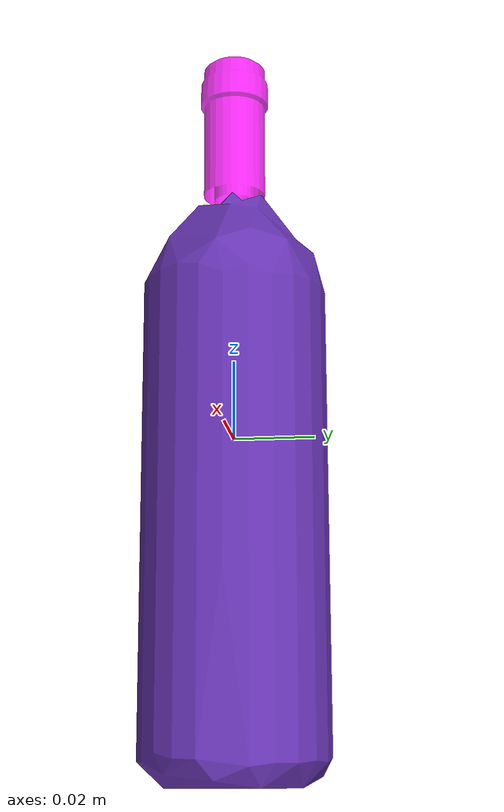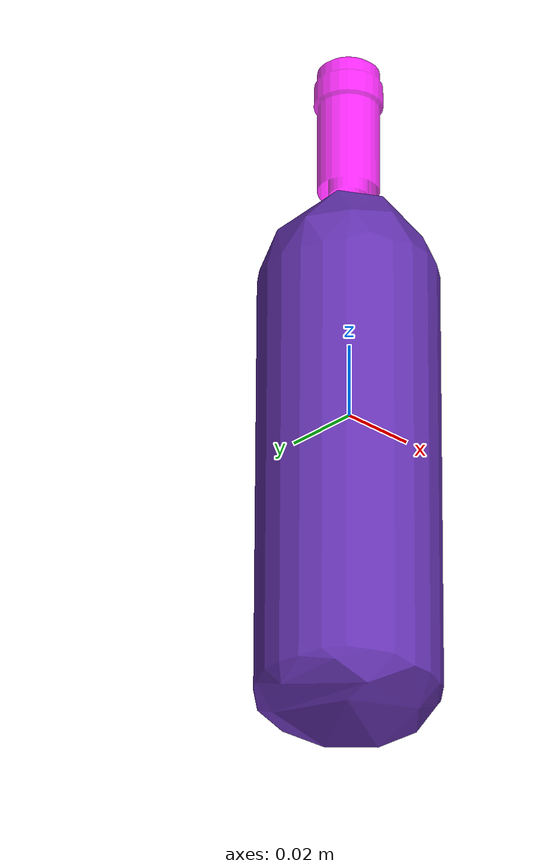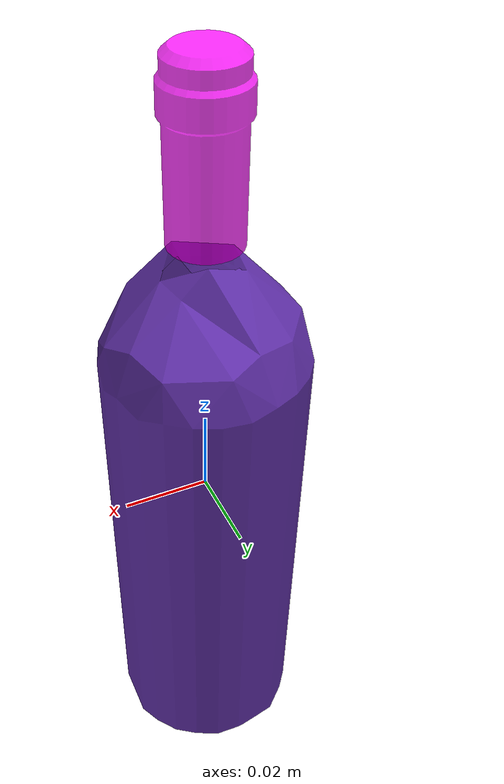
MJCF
<?xml version="1.0" encoding="utf-8"?>
<mujoco model="top_watertight_tiny">

  <asset>

    <mesh file="top_watertight_tiny.obj"/>

    <mesh file="top_watertight_tiny_collision_0.obj"/>

    <mesh file="top_watertight_tiny_collision_1.obj"/>

    <mesh file="top_watertight_tiny_collision_2.obj"/>

    <mesh file="top_watertight_tiny_collision_3.obj"/>

    <mesh file="top_watertight_tiny_collision_4.obj"/>

    <mesh file="top_watertight_tiny_collision_5.obj"/>

    <mesh file="top_watertight_tiny_collision_6.obj"/>

    <mesh file="top_watertight_tiny_collision_7.obj"/>

    <mesh file="top_watertight_tiny_collision_8.obj"/>

    <mesh file="top_watertight_tiny_collision_9.obj"/>

    <mesh file="top_watertight_tiny_collision_10.obj"/>

    <mesh file="top_watertight_tiny_collision_11.obj"/>

    <mesh file="top_watertight_tiny_collision_12.obj"/>

    <mesh file="top_watertight_tiny_collision_13.obj"/>

    <mesh file="top_watertight_tiny_collision_14.obj"/>

    <mesh file="top_watertight_tiny_collision_15.obj"/>

    <mesh file="top_watertight_tiny_collision_16.obj"/>

    <mesh file="top_watertight_tiny_collision_17.obj"/>

    <mesh file="top_watertight_tiny_collision_18.obj"/>

    <mesh file="top_watertight_tiny_collision_19.obj"/>

    <mesh file="top_watertight_tiny_collision_20.obj"/>

    <mesh file="top_watertight_tiny_collision_21.obj"/>

    <mesh file="top_watertight_tiny_collision_22.obj"/>

    <mesh file="top_watertight_tiny_collision_23.obj"/>

    <mesh file="top_watertight_tiny_collision_24.obj"/>

    <mesh file="top_watertight_tiny_collision_25.obj"/>

    <mesh file="top_watertight_tiny_collision_26.obj"/>

    <mesh file="top_watertight_tiny_collision_27.obj"/>

    <mesh file="top_watertight_tiny_collision_28.obj"/>

    <mesh file="top_watertight_tiny_collision_29.obj"/>

    <mesh file="top_watertight_tiny_collision_30.obj"/>

    <mesh file="top_watertight_tiny_collision_31.obj"/>

    <mesh file="top_watertight_tiny_collision_32.obj"/>

    <mesh file="top_watertight_tiny_collision_33.obj"/>

    <mesh file="top_watertight_tiny_collision_34.obj"/>

    <mesh file="top_watertight_tiny_collision_35.obj"/>

    <mesh file="top_watertight_tiny_collision_36.obj"/>

    <mesh file="bottom_watertight_tiny.obj"/>

    <mesh file="bottom_watertight_tiny_collision_0.obj"/>

    <mesh file="bottom_watertight_tiny_collision_1.obj"/>

    <mesh file="bottom_watertight_tiny_collision_2.obj"/>

    <mesh file="bottom_watertight_tiny_collision_3.obj"/>

    <mesh file="bottom_watertight_tiny_collision_4.obj"/>

    <mesh file="bottom_watertight_tiny_collision_5.obj"/>

    <mesh file="bottom_watertight_tiny_collision_6.obj"/>

    <mesh file="bottom_watertight_tiny_collision_7.obj"/>

    <mesh file="bottom_watertight_tiny_collision_8.obj"/>

    <mesh file="bottom_watertight_tiny_collision_9.obj"/>

    <mesh file="bottom_watertight_tiny_collision_10.obj"/>

    <mesh file="bottom_watertight_tiny_collision_11.obj"/>

    <mesh file="bottom_watertight_tiny_collision_12.obj"/>

    <mesh file="bottom_watertight_tiny_collision_13.obj"/>

    <mesh file="bottom_watertight_tiny_collision_14.obj"/>

    <mesh file="bottom_watertight_tiny_collision_15.obj"/>

    <mesh file="bottom_watertight_tiny_collision_16.obj"/>

    <mesh file="bottom_watertight_tiny_collision_17.obj"/>

    <mesh file="bottom_watertight_tiny_collision_18.obj"/>

    <mesh file="bottom_watertight_tiny_collision_19.obj"/>

    <mesh file="bottom_watertight_tiny_collision_20.obj"/>

    <mesh file="bottom_watertight_tiny_collision_21.obj"/>

    <mesh file="bottom_watertight_tiny_collision_22.obj"/>

    <mesh file="bottom_watertight_tiny_collision_23.obj"/>

    <mesh file="bottom_watertight_tiny_collision_24.obj"/>

    <mesh file="bottom_watertight_tiny_collision_25.obj"/>

    <mesh file="bottom_watertight_tiny_collision_26.obj"/>

    <mesh file="bottom_watertight_tiny_collision_27.obj"/>

    <mesh file="bottom_watertight_tiny_collision_28.obj"/>

    <mesh file="bottom_watertight_tiny_collision_29.obj"/>

    <mesh file="bottom_watertight_tiny_collision_30.obj"/>

    <mesh file="bottom_watertight_tiny_collision_31.obj"/>

    <mesh file="bottom_watertight_tiny_collision_32.obj"/>

    <mesh file="bottom_watertight_tiny_collision_33.obj"/>

    <mesh file="bottom_watertight_tiny_collision_34.obj"/>

    <mesh file="bottom_watertight_tiny_collision_35.obj"/>

    <mesh file="bottom_watertight_tiny_collision_36.obj"/>

    <mesh file="bottom_watertight_tiny_collision_37.obj"/>

    <mesh file="bottom_watertight_tiny_collision_38.obj"/>

    <mesh file="bottom_watertight_tiny_collision_39.obj"/>

    <mesh file="bottom_watertight_tiny_collision_40.obj"/>

    <mesh file="bottom_watertight_tiny_collision_41.obj"/>

    <mesh file="bottom_watertight_tiny_collision_42.obj"/>

    <mesh file="bottom_watertight_tiny_collision_43.obj"/>

    <mesh file="bottom_watertight_tiny_collision_44.obj"/>

    <mesh file="bottom_watertight_tiny_collision_45.obj"/>

    <mesh file="bottom_watertight_tiny_collision_46.obj"/>

    <mesh file="bottom_watertight_tiny_collision_47.obj"/>

    <mesh file="bottom_watertight_tiny_collision_48.obj"/>

    <mesh file="bottom_watertight_tiny_collision_49.obj"/>

    <mesh file="bottom_watertight_tiny_collision_50.obj"/>

    <mesh file="bottom_watertight_tiny_collision_51.obj"/>

    <mesh file="bottom_watertight_tiny_collision_52.obj"/>

    <mesh file="bottom_watertight_tiny_collision_53.obj"/>

    <mesh file="bottom_watertight_tiny_collision_54.obj"/>

    <mesh file="bottom_watertight_tiny_collision_55.obj"/>

    <mesh file="bottom_watertight_tiny_collision_56.obj"/>

    <mesh file="bottom_watertight_tiny_collision_57.obj"/>

    <mesh file="bottom_watertight_tiny_collision_58.obj"/>

    <mesh file="bottom_watertight_tiny_collision_59.obj"/>

    <mesh file="bottom_watertight_tiny_collision_60.obj"/>

    <mesh file="bottom_watertight_tiny_collision_61.obj"/>

    <mesh file="bottom_watertight_tiny_collision_62.obj"/>

    <mesh file="bottom_watertight_tiny_collision_63.obj"/>

    <mesh file="bottom_watertight_tiny_collision_64.obj"/>

    <mesh file="bottom_watertight_tiny_collision_65.obj"/>

    <mesh file="bottom_watertight_tiny_collision_66.obj"/>

    <mesh file="bottom_watertight_tiny_collision_67.obj"/>

    <mesh file="bottom_watertight_tiny_collision_68.obj"/>

    <mesh file="bottom_watertight_tiny_collision_69.obj"/>

    <mesh file="bottom_watertight_tiny_collision_70.obj"/>

    <mesh file="bottom_watertight_tiny_collision_71.obj"/>

    <mesh file="bottom_watertight_tiny_collision_72.obj"/>

    <mesh file="bottom_watertight_tiny_collision_73.obj"/>

    <mesh file="bottom_watertight_tiny_collision_74.obj"/>

    <mesh file="bottom_watertight_tiny_collision_75.obj"/>

    <mesh file="bottom_watertight_tiny_collision_76.obj"/>

    <mesh file="bottom_watertight_tiny_collision_77.obj"/>

    <mesh file="bottom_watertight_tiny_collision_78.obj"/>

    <mesh file="bottom_watertight_tiny_collision_79.obj"/>

    <mesh file="bottom_watertight_tiny_collision_80.obj"/>

    <mesh file="bottom_watertight_tiny_collision_81.obj"/>

    <mesh file="bottom_watertight_tiny_collision_82.obj"/>

    <mesh file="bottom_watertight_tiny_collision_83.obj"/>

    <mesh file="bottom_watertight_tiny_collision_84.obj"/>

    <mesh file="bottom_watertight_tiny_collision_85.obj"/>

    <mesh file="bottom_watertight_tiny_collision_86.obj"/>

    <mesh file="bottom_watertight_tiny_collision_87.obj"/>

    <mesh file="bottom_watertight_tiny_collision_88.obj"/>

    <mesh file="bottom_watertight_tiny_collision_89.obj"/>

    <mesh file="bottom_watertight_tiny_collision_90.obj"/>

    <mesh file="bottom_watertight_tiny_collision_91.obj"/>

    <mesh file="bottom_watertight_tiny_collision_92.obj"/>

    <mesh file="bottom_watertight_tiny_collision_93.obj"/>

  </asset>

  <worldbody>

    <body name="top_watertight_tiny">

      <freejoint/>

      <geom mesh="top_watertight_tiny" group="2" type="mesh" rgba="0.4 0.2 0.7 1" contype="0" conaffinity="0" solimp="0.90 0.95 0.001" solref="0.02 1.0" density="100" friction="0.95 0.4 0.3"/>

      <geom mesh="top_watertight_tiny_collision_0" rgba="0.7639131796229641 0.8766174646966979 0.84592390301641 1" group="3" type="mesh" solimp="0.90 0.95 0.001" solref="0.02 1.0" density="100" friction="0.95 0.4 0.3"/>

      <geom mesh="top_watertight_tiny_collision_1" rgba="0.19510721336041992 0.7987230168485298 0.9120150826801752 1" group="3" type="mesh" solimp="0.90 0.95 0.001" solref="0.02 1.0" density="100" friction="0.95 0.4 0.3"/>

      <geom mesh="top_watertight_tiny_collision_2" rgba="0.9602540300898867 0.8270701579940186 0.8924194395684479 1" group="3" type="mesh" solimp="0.90 0.95 0.001" solref="0.02 1.0" density="100" friction="0.95 0.4 0.3"/>

      <geom mesh="top_watertight_tiny_collision_3" rgba="0.15298178990234457 0.6684590594172674 0.7716984160903877 1" group="3" type="mesh" solimp="0.90 0.95 0.001" solref="0.02 1.0" density="100" friction="0.95 0.4 0.3"/>

      <geom mesh="top_watertight_tiny_collision_4" rgba="0.58464338885555 0.4945434229659038 0.4750791218380328 1" group="3" type="mesh" solimp="0.90 0.95 0.001" solref="0.02 1.0" density="100" friction="0.95 0.4 0.3"/>

      <geom mesh="top_watertight_tiny_collision_5" rgba="0.4601047467938191 0.2160642820322619 0.7561873815878265 1" group="3" type="mesh" solimp="0.90 0.95 0.001" solref="0.02 1.0" density="100" friction="0.95 0.4 0.3"/>

      <geom mesh="top_watertight_tiny_collision_6" rgba="0.2959025538195038 0.7032097822555691 0.18761564830547317 1" group="3" type="mesh" solimp="0.90 0.95 0.001" solref="0.02 1.0" density="100" friction="0.95 0.4 0.3"/>

      <geom mesh="top_watertight_tiny_collision_7" rgba="0.7169793740565072 0.5761407707422053 0.22744858187672734 1" group="3" type="mesh" solimp="0.90 0.95 0.001" solref="0.02 1.0" density="100" friction="0.95 0.4 0.3"/>

      <geom mesh="top_watertight_tiny_collision_8" rgba="0.1307638791836434 0.3065480760086786 0.7687001497967263 1" group="3" type="mesh" solimp="0.90 0.95 0.001" solref="0.02 1.0" density="100" friction="0.95 0.4 0.3"/>

      <geom mesh="top_watertight_tiny_collision_9" rgba="0.10890787358804177 0.784763120940705 0.4915728737176337 1" group="3" type="mesh" solimp="0.90 0.95 0.001" solref="0.02 1.0" density="100" friction="0.95 0.4 0.3"/>

      <geom mesh="top_watertight_tiny_collision_10" rgba="0.9780890256800918 0.7475122147847815 0.7068656836181546 1" group="3" type="mesh" solimp="0.90 0.95 0.001" solref="0.02 1.0" density="100" friction="0.95 0.4 0.3"/>

      <geom mesh="top_watertight_tiny_collision_11" rgba="0.2506220678483987 0.5373837416915994 0.9608969145724282 1" group="3" type="mesh" solimp="0.90 0.95 0.001" solref="0.02 1.0" density="100" friction="0.95 0.4 0.3"/>

      <geom mesh="top_watertight_tiny_collision_12" rgba="0.645609437624362 0.7030347403907194 0.7968083338602769 1" group="3" type="mesh" solimp="0.90 0.95 0.001" solref="0.02 1.0" density="100" friction="0.95 0.4 0.3"/>

      <geom mesh="top_watertight_tiny_collision_13" rgba="0.5619024916672556 0.7367007362024118 0.9072824838928428 1" group="3" type="mesh" solimp="0.90 0.95 0.001" solref="0.02 1.0" density="100" friction="0.95 0.4 0.3"/>

      <geom mesh="top_watertight_tiny_collision_14" rgba="0.6770641619365368 0.6389454421997466 0.3428296104017664 1" group="3" type="mesh" solimp="0.90 0.95 0.001" solref="0.02 1.0" density="100" friction="0.95 0.4 0.3"/>

      <geom mesh="top_watertight_tiny_collision_15" rgba="0.40410237035899976 0.6487599156065581 0.9279989628421783 1" group="3" type="mesh" solimp="0.90 0.95 0.001" solref="0.02 1.0" density="100" friction="0.95 0.4 0.3"/>

      <geom mesh="top_watertight_tiny_collision_16" rgba="0.007504496079856149 0.15764836382406144 0.9603950291772815 1" group="3" type="mesh" solimp="0.90 0.95 0.001" solref="0.02 1.0" density="100" friction="0.95 0.4 0.3"/>

      <geom mesh="top_watertight_tiny_collision_17" rgba="0.19496105483289294 0.7262193248307516 0.584420613435376 1" group="3" type="mesh" solimp="0.90 0.95 0.001" solref="0.02 1.0" density="100" friction="0.95 0.4 0.3"/>

      <geom mesh="top_watertight_tiny_collision_18" rgba="0.04987727353918392 0.1395307956509042 0.18204156767560198 1" group="3" type="mesh" solimp="0.90 0.95 0.001" solref="0.02 1.0" density="100" friction="0.95 0.4 0.3"/>

      <geom mesh="top_watertight_tiny_collision_19" rgba="0.5995248258010721 0.18310495799447113 0.8793140058193356 1" group="3" type="mesh" solimp="0.90 0.95 0.001" solref="0.02 1.0" density="100" friction="0.95 0.4 0.3"/>

      <geom mesh="top_watertight_tiny_collision_20" rgba="0.5277131052826484 0.03456818763062319 0.6095338758826968 1" group="3" type="mesh" solimp="0.90 0.95 0.001" solref="0.02 1.0" density="100" friction="0.95 0.4 0.3"/>

      <geom mesh="top_watertight_tiny_collision_21" rgba="0.6166677694327913 0.6264601628174831 0.2184817010494029 1" group="3" type="mesh" solimp="0.90 0.95 0.001" solref="0.02 1.0" density="100" friction="0.95 0.4 0.3"/>

      <geom mesh="top_watertight_tiny_collision_22" rgba="0.7102041265512519 0.7002672895857274 0.02212696242653689 1" group="3" type="mesh" solimp="0.90 0.95 0.001" solref="0.02 1.0" density="100" friction="0.95 0.4 0.3"/>

      <geom mesh="top_watertight_tiny_collision_23" rgba="0.08001569328377245 0.6924060442300365 0.8178750956627043 1" group="3" type="mesh" solimp="0.90 0.95 0.001" solref="0.02 1.0" density="100" friction="0.95 0.4 0.3"/>

      <geom mesh="top_watertight_tiny_collision_24" rgba="0.04471000420996185 0.7066463699724858 0.7827603011706414 1" group="3" type="mesh" solimp="0.90 0.95 0.001" solref="0.02 1.0" density="100" friction="0.95 0.4 0.3"/>

      <geom mesh="top_watertight_tiny_collision_25" rgba="0.5283444125332001 0.6581429813256201 0.551031836223589 1" group="3" type="mesh" solimp="0.90 0.95 0.001" solref="0.02 1.0" density="100" friction="0.95 0.4 0.3"/>

      <geom mesh="top_watertight_tiny_collision_26" rgba="0.3022475832179793 0.9149638373864749 0.7333979811387425 1" group="3" type="mesh" solimp="0.90 0.95 0.001" solref="0.02 1.0" density="100" friction="0.95 0.4 0.3"/>

      <geom mesh="top_watertight_tiny_collision_27" rgba="0.893281969260742 0.03795587646726628 0.32893539912938696 1" group="3" type="mesh" solimp="0.90 0.95 0.001" solref="0.02 1.0" density="100" friction="0.95 0.4 0.3"/>

      <geom mesh="top_watertight_tiny_collision_28" rgba="0.9094240134952587 0.6339879588056984 0.7976324502315822 1" group="3" type="mesh" solimp="0.90 0.95 0.001" solref="0.02 1.0" density="100" friction="0.95 0.4 0.3"/>

      <geom mesh="top_watertight_tiny_collision_29" rgba="0.4633556792218282 0.5275787242084681 0.5475225953091643 1" group="3" type="mesh" solimp="0.90 0.95 0.001" solref="0.02 1.0" density="100" friction="0.95 0.4 0.3"/>

      <geom mesh="top_watertight_tiny_collision_30" rgba="0.5353972680837177 0.6747318857295015 0.41134759567536316 1" group="3" type="mesh" solimp="0.90 0.95 0.001" solref="0.02 1.0" density="100" friction="0.95 0.4 0.3"/>

      <geom mesh="top_watertight_tiny_collision_31" rgba="0.7787796308839616 0.37187447519404837 0.08521890751006556 1" group="3" type="mesh" solimp="0.90 0.95 0.001" solref="0.02 1.0" density="100" friction="0.95 0.4 0.3"/>

      <geom mesh="top_watertight_tiny_collision_32" rgba="0.59077444678266 0.03400599660107928 0.3569970660589773 1" group="3" type="mesh" solimp="0.90 0.95 0.001" solref="0.02 1.0" density="100" friction="0.95 0.4 0.3"/>

      <geom mesh="top_watertight_tiny_collision_33" rgba="0.7453966552439302 0.12250132301758254 0.3913120432382262 1" group="3" type="mesh" solimp="0.90 0.95 0.001" solref="0.02 1.0" density="100" friction="0.95 0.4 0.3"/>

      <geom mesh="top_watertight_tiny_collision_34" rgba="0.15481366485193715 0.8658717182644121 0.6147008026464785 1" group="3" type="mesh" solimp="0.90 0.95 0.001" solref="0.02 1.0" density="100" friction="0.95 0.4 0.3"/>

      <geom mesh="top_watertight_tiny_collision_35" rgba="0.48377483204822336 0.3395572748846186 0.05324692686646837 1" group="3" type="mesh" solimp="0.90 0.95 0.001" solref="0.02 1.0" density="100" friction="0.95 0.4 0.3"/>

      <geom mesh="top_watertight_tiny_collision_36" rgba="0.5991884680051638 0.19458855608337533 0.27392460886472236 1" group="3" type="mesh" solimp="0.90 0.95 0.001" solref="0.02 1.0" density="100" friction="0.95 0.4 0.3"/>

      <body name="bottom_watertight_tiny">

        <geom mesh="bottom_watertight_tiny" group="2" type="mesh" rgba="1 0 1 0.8" contype="0" conaffinity="0" solimp="0.90 0.95 0.001" solref="0.02 1.0" density="100" friction="0.95 0.4 0.3"/>

        <geom mesh="bottom_watertight_tiny_collision_0" rgba="0.9853082144443334 0.38233365690192034 0.24698996170023246 1" group="3" type="mesh" solimp="0.90 0.95 0.001" solref="0.02 1.0" density="100" friction="0.95 0.4 0.3"/>

        <geom mesh="bottom_watertight_tiny_collision_1" rgba="0.3083875910203884 0.9671429320074734 0.9790526799747874 1" group="3" type="mesh" solimp="0.90 0.95 0.001" solref="0.02 1.0" density="100" friction="0.95 0.4 0.3"/>

        <geom mesh="bottom_watertight_tiny_collision_2" rgba="0.8781446943270005 0.2192290588660426 0.44300979918887706 1" group="3" type="mesh" solimp="0.90 0.95 0.001" solref="0.02 1.0" density="100" friction="0.95 0.4 0.3"/>

        <geom mesh="bottom_watertight_tiny_collision_3" rgba="0.1741220077358372 0.3251538654090539 0.7429052278362229 1" group="3" type="mesh" solimp="0.90 0.95 0.001" solref="0.02 1.0" density="100" friction="0.95 0.4 0.3"/>

        <geom mesh="bottom_watertight_tiny_collision_4" rgba="0.10915865590272145 0.3343855142909302 0.9866967469484065 1" group="3" type="mesh" solimp="0.90 0.95 0.001" solref="0.02 1.0" density="100" friction="0.95 0.4 0.3"/>

        <geom mesh="bottom_watertight_tiny_collision_5" rgba="0.25947673515271186 0.7384080607275862 0.45977848998197046 1" group="3" type="mesh" solimp="0.90 0.95 0.001" solref="0.02 1.0" density="100" friction="0.95 0.4 0.3"/>

        <geom mesh="bottom_watertight_tiny_collision_6" rgba="0.0415232114101286 0.8959007229286848 0.36003999852527024 1" group="3" type="mesh" solimp="0.90 0.95 0.001" solref="0.02 1.0" density="100" friction="0.95 0.4 0.3"/>

        <geom mesh="bottom_watertight_tiny_collision_7" rgba="0.7683340571687312 0.5480132849196077 0.7930444177387387 1" group="3" type="mesh" solimp="0.90 0.95 0.001" solref="0.02 1.0" density="100" friction="0.95 0.4 0.3"/>

        <geom mesh="bottom_watertight_tiny_collision_8" rgba="0.44368754701543833 0.2095262419619346 0.788988744952007 1" group="3" type="mesh" solimp="0.90 0.95 0.001" solref="0.02 1.0" density="100" friction="0.95 0.4 0.3"/>

        <geom mesh="bottom_watertight_tiny_collision_9" rgba="0.07330606377444193 0.8267267944720152 0.45513073168566 1" group="3" type="mesh" solimp="0.90 0.95 0.001" solref="0.02 1.0" density="100" friction="0.95 0.4 0.3"/>

        <geom mesh="bottom_watertight_tiny_collision_10" rgba="0.12781158498267775 0.08745929155287924 0.2599902867010725 1" group="3" type="mesh" solimp="0.90 0.95 0.001" solref="0.02 1.0" density="100" friction="0.95 0.4 0.3"/>

        <geom mesh="bottom_watertight_tiny_collision_11" rgba="0.5844625476926059 0.15946536351993246 0.9864688454268145 1" group="3" type="mesh" solimp="0.90 0.95 0.001" solref="0.02 1.0" density="100" friction="0.95 0.4 0.3"/>

        <geom mesh="bottom_watertight_tiny_collision_12" rgba="0.8380231988702354 0.15070037666813585 0.23065274579927975 1" group="3" type="mesh" solimp="0.90 0.95 0.001" solref="0.02 1.0" density="100" friction="0.95 0.4 0.3"/>

        <geom mesh="bottom_watertight_tiny_collision_13" rgba="0.19112567865055108 0.03940339015411143 0.4342191441709634 1" group="3" type="mesh" solimp="0.90 0.95 0.001" solref="0.02 1.0" density="100" friction="0.95 0.4 0.3"/>

        <geom mesh="bottom_watertight_tiny_collision_14" rgba="0.400991622546508 0.9571608466614671 0.1843398681592192 1" group="3" type="mesh" solimp="0.90 0.95 0.001" solref="0.02 1.0" density="100" friction="0.95 0.4 0.3"/>

        <geom mesh="bottom_watertight_tiny_collision_15" rgba="0.36100474661372306 0.9957896371533742 0.8383253591757491 1" group="3" type="mesh" solimp="0.90 0.95 0.001" solref="0.02 1.0" density="100" friction="0.95 0.4 0.3"/>

        <geom mesh="bottom_watertight_tiny_collision_16" rgba="0.3213961268705443 0.6459938416941668 0.8781538437242606 1" group="3" type="mesh" solimp="0.90 0.95 0.001" solref="0.02 1.0" density="100" friction="0.95 0.4 0.3"/>

        <geom mesh="bottom_watertight_tiny_collision_17" rgba="0.04612167889660179 0.4550652019429594 0.24860608806497086 1" group="3" type="mesh" solimp="0.90 0.95 0.001" solref="0.02 1.0" density="100" friction="0.95 0.4 0.3"/>

        <geom mesh="bottom_watertight_tiny_collision_18" rgba="0.39619000912190694 0.26016128885640843 0.03906589184522402 1" group="3" type="mesh" solimp="0.90 0.95 0.001" solref="0.02 1.0" density="100" friction="0.95 0.4 0.3"/>

        <geom mesh="bottom_watertight_tiny_collision_19" rgba="0.8422748012211095 0.302433812277898 0.20294926589119022 1" group="3" type="mesh" solimp="0.90 0.95 0.001" solref="0.02 1.0" density="100" friction="0.95 0.4 0.3"/>

        <geom mesh="bottom_watertight_tiny_collision_20" rgba="0.21148729104562836 0.46043218513833173 0.7638151421762904 1" group="3" type="mesh" solimp="0.90 0.95 0.001" solref="0.02 1.0" density="100" friction="0.95 0.4 0.3"/>

        <geom mesh="bottom_watertight_tiny_collision_21" rgba="0.7352828485668915 0.6826113084061032 0.27270586913856387 1" group="3" type="mesh" solimp="0.90 0.95 0.001" solref="0.02 1.0" density="100" friction="0.95 0.4 0.3"/>

        <geom mesh="bottom_watertight_tiny_collision_22" rgba="0.8655683915175284 0.714536327771994 0.9972263611422214 1" group="3" type="mesh" solimp="0.90 0.95 0.001" solref="0.02 1.0" density="100" friction="0.95 0.4 0.3"/>

        <geom mesh="bottom_watertight_tiny_collision_23" rgba="0.5149983102271192 0.06343067744052844 0.8017542759915478 1" group="3" type="mesh" solimp="0.90 0.95 0.001" solref="0.02 1.0" density="100" friction="0.95 0.4 0.3"/>

        <geom mesh="bottom_watertight_tiny_collision_24" rgba="0.4934365017366993 0.9063691765150296 0.5261688495228233 1" group="3" type="mesh" solimp="0.90 0.95 0.001" solref="0.02 1.0" density="100" friction="0.95 0.4 0.3"/>

        <geom mesh="bottom_watertight_tiny_collision_25" rgba="0.18213576718722901 0.9021919159410994 0.8839478075589322 1" group="3" type="mesh" solimp="0.90 0.95 0.001" solref="0.02 1.0" density="100" friction="0.95 0.4 0.3"/>

        <geom mesh="bottom_watertight_tiny_collision_26" rgba="0.9710993297200944 0.45615680921021806 0.24048894730896675 1" group="3" type="mesh" solimp="0.90 0.95 0.001" solref="0.02 1.0" density="100" friction="0.95 0.4 0.3"/>

        <geom mesh="bottom_watertight_tiny_collision_27" rgba="0.028309443905967346 0.8737187667212292 0.20977256261819544 1" group="3" type="mesh" solimp="0.90 0.95 0.001" solref="0.02 1.0" density="100" friction="0.95 0.4 0.3"/>

        <geom mesh="bottom_watertight_tiny_collision_28" rgba="0.5366351598043515 0.6880966024514533 0.6834351566444892 1" group="3" type="mesh" solimp="0.90 0.95 0.001" solref="0.02 1.0" density="100" friction="0.95 0.4 0.3"/>

        <geom mesh="bottom_watertight_tiny_collision_29" rgba="0.4325810192211925 0.48035184718223967 0.29210589692593114 1" group="3" type="mesh" solimp="0.90 0.95 0.001" solref="0.02 1.0" density="100" friction="0.95 0.4 0.3"/>

        <geom mesh="bottom_watertight_tiny_collision_30" rgba="0.9308380846414873 0.6758057601912336 0.3453138511078192 1" group="3" type="mesh" solimp="0.90 0.95 0.001" solref="0.02 1.0" density="100" friction="0.95 0.4 0.3"/>

        <geom mesh="bottom_watertight_tiny_collision_31" rgba="0.2725359243000839 0.7325519704752896 0.74555361502356 1" group="3" type="mesh" solimp="0.90 0.95 0.001" solref="0.02 1.0" density="100" friction="0.95 0.4 0.3"/>

        <geom mesh="bottom_watertight_tiny_collision_32" rgba="0.9812433260081983 0.3948468706199255 0.9945554765429027 1" group="3" type="mesh" solimp="0.90 0.95 0.001" solref="0.02 1.0" density="100" friction="0.95 0.4 0.3"/>

        <geom mesh="bottom_watertight_tiny_collision_33" rgba="0.56378504030355 0.8550292109904425 0.22745660741129792 1" group="3" type="mesh" solimp="0.90 0.95 0.001" solref="0.02 1.0" density="100" friction="0.95 0.4 0.3"/>

        <geom mesh="bottom_watertight_tiny_collision_34" rgba="0.7988481763610453 0.010090313214458413 0.29927056086393444 1" group="3" type="mesh" solimp="0.90 0.95 0.001" solref="0.02 1.0" density="100" friction="0.95 0.4 0.3"/>

        <geom mesh="bottom_watertight_tiny_collision_35" rgba="0.6928191324769346 0.08088564915998198 0.677058555884116 1" group="3" type="mesh" solimp="0.90 0.95 0.001" solref="0.02 1.0" density="100" friction="0.95 0.4 0.3"/>

        <geom mesh="bottom_watertight_tiny_collision_36" rgba="0.5305010231202294 0.27129620233698926 0.25282251586247817 1" group="3" type="mesh" solimp="0.90 0.95 0.001" solref="0.02 1.0" density="100" friction="0.95 0.4 0.3"/>

        <geom mesh="bottom_watertight_tiny_collision_37" rgba="0.9458976701989638 0.4643456579716624 0.3061313921007597 1" group="3" type="mesh" solimp="0.90 0.95 0.001" solref="0.02 1.0" density="100" friction="0.95 0.4 0.3"/>

        <geom mesh="bottom_watertight_tiny_collision_38" rgba="0.9504948309251797 0.9235807865628124 0.34314284326978617 1" group="3" type="mesh" solimp="0.90 0.95 0.001" solref="0.02 1.0" density="100" friction="0.95 0.4 0.3"/>

        <geom mesh="bottom_watertight_tiny_collision_39" rgba="0.8243449539948448 0.4124947182950083 0.194084454223862 1" group="3" type="mesh" solimp="0.90 0.95 0.001" solref="0.02 1.0" density="100" friction="0.95 0.4 0.3"/>

        <geom mesh="bottom_watertight_tiny_collision_40" rgba="0.6082949591387199 0.12186369637297756 0.969075572499188 1" group="3" type="mesh" solimp="0.90 0.95 0.001" solref="0.02 1.0" density="100" friction="0.95 0.4 0.3"/>

        <geom mesh="bottom_watertight_tiny_collision_41" rgba="0.012336216180586668 0.8436226050478052 0.6270431593922082 1" group="3" type="mesh" solimp="0.90 0.95 0.001" solref="0.02 1.0" density="100" friction="0.95 0.4 0.3"/>

        <geom mesh="bottom_watertight_tiny_collision_42" rgba="0.2959522768954572 0.7908787766917386 0.030525456010583762 1" group="3" type="mesh" solimp="0.90 0.95 0.001" solref="0.02 1.0" density="100" friction="0.95 0.4 0.3"/>

        <geom mesh="bottom_watertight_tiny_collision_43" rgba="0.4495084522831816 0.6306435230530456 0.23493339634158195 1" group="3" type="mesh" solimp="0.90 0.95 0.001" solref="0.02 1.0" density="100" friction="0.95 0.4 0.3"/>

        <geom mesh="bottom_watertight_tiny_collision_44" rgba="0.30414620463523356 0.7535226447160621 0.7463606267646422 1" group="3" type="mesh" solimp="0.90 0.95 0.001" solref="0.02 1.0" density="100" friction="0.95 0.4 0.3"/>

        <geom mesh="bottom_watertight_tiny_collision_45" rgba="0.16618393365986228 0.869951865731177 0.16442043404854478 1" group="3" type="mesh" solimp="0.90 0.95 0.001" solref="0.02 1.0" density="100" friction="0.95 0.4 0.3"/>

        <geom mesh="bottom_watertight_tiny_collision_46" rgba="0.332395047155295 0.8805374601490471 0.9494312748667132 1" group="3" type="mesh" solimp="0.90 0.95 0.001" solref="0.02 1.0" density="100" friction="0.95 0.4 0.3"/>

        <geom mesh="bottom_watertight_tiny_collision_47" rgba="0.5465902352265762 0.4300276729300828 0.7550727307116121 1" group="3" type="mesh" solimp="0.90 0.95 0.001" solref="0.02 1.0" density="100" friction="0.95 0.4 0.3"/>

        <geom mesh="bottom_watertight_tiny_collision_48" rgba="0.1478303243165715 0.409423492505542 0.7840353427362277 1" group="3" type="mesh" solimp="0.90 0.95 0.001" solref="0.02 1.0" density="100" friction="0.95 0.4 0.3"/>

        <geom mesh="bottom_watertight_tiny_collision_49" rgba="0.2295937668223993 0.3147610356467221 0.7007118153231437 1" group="3" type="mesh" solimp="0.90 0.95 0.001" solref="0.02 1.0" density="100" friction="0.95 0.4 0.3"/>

        <geom mesh="bottom_watertight_tiny_collision_50" rgba="0.0701301044184961 0.6136235431664804 0.5587415352322964 1" group="3" type="mesh" solimp="0.90 0.95 0.001" solref="0.02 1.0" density="100" friction="0.95 0.4 0.3"/>

        <geom mesh="bottom_watertight_tiny_collision_51" rgba="0.8345001953782328 0.2644629063162245 0.6542176999705543 1" group="3" type="mesh" solimp="0.90 0.95 0.001" solref="0.02 1.0" density="100" friction="0.95 0.4 0.3"/>

        <geom mesh="bottom_watertight_tiny_collision_52" rgba="0.9555182830062307 0.011696812506355903 0.46539141546305174 1" group="3" type="mesh" solimp="0.90 0.95 0.001" solref="0.02 1.0" density="100" friction="0.95 0.4 0.3"/>

        <geom mesh="bottom_watertight_tiny_collision_53" rgba="0.1633907221582337 0.5669722078729358 0.19790883431446704 1" group="3" type="mesh" solimp="0.90 0.95 0.001" solref="0.02 1.0" density="100" friction="0.95 0.4 0.3"/>

        <geom mesh="bottom_watertight_tiny_collision_54" rgba="0.1565437014834189 0.5967917389092007 0.4141050394992819 1" group="3" type="mesh" solimp="0.90 0.95 0.001" solref="0.02 1.0" density="100" friction="0.95 0.4 0.3"/>

        <geom mesh="bottom_watertight_tiny_collision_55" rgba="0.9489612439999132 0.5437246268335816 0.055133379912767455 1" group="3" type="mesh" solimp="0.90 0.95 0.001" solref="0.02 1.0" density="100" friction="0.95 0.4 0.3"/>

        <geom mesh="bottom_watertight_tiny_collision_56" rgba="0.5277600421327896 0.980369918962574 0.8113968829192205 1" group="3" type="mesh" solimp="0.90 0.95 0.001" solref="0.02 1.0" density="100" friction="0.95 0.4 0.3"/>

        <geom mesh="bottom_watertight_tiny_collision_57" rgba="0.5480499944641636 0.6001248403511525 0.7361044270068366 1" group="3" type="mesh" solimp="0.90 0.95 0.001" solref="0.02 1.0" density="100" friction="0.95 0.4 0.3"/>

        <geom mesh="bottom_watertight_tiny_collision_58" rgba="0.3187047278618407 0.6128659610409645 0.5058840612239923 1" group="3" type="mesh" solimp="0.90 0.95 0.001" solref="0.02 1.0" density="100" friction="0.95 0.4 0.3"/>

        <geom mesh="bottom_watertight_tiny_collision_59" rgba="0.2655190945411976 0.9181319278531941 0.0007245887308305887 1" group="3" type="mesh" solimp="0.90 0.95 0.001" solref="0.02 1.0" density="100" friction="0.95 0.4 0.3"/>

        <geom mesh="bottom_watertight_tiny_collision_60" rgba="0.7967520426635888 0.8174149438879775 0.7300202086394246 1" group="3" type="mesh" solimp="0.90 0.95 0.001" solref="0.02 1.0" density="100" friction="0.95 0.4 0.3"/>

        <geom mesh="bottom_watertight_tiny_collision_61" rgba="0.138554531427025 0.44074774451541976 0.09164090078699016 1" group="3" type="mesh" solimp="0.90 0.95 0.001" solref="0.02 1.0" density="100" friction="0.95 0.4 0.3"/>

        <geom mesh="bottom_watertight_tiny_collision_62" rgba="0.286131999087723 0.39079140805963253 0.66640603783387 1" group="3" type="mesh" solimp="0.90 0.95 0.001" solref="0.02 1.0" density="100" friction="0.95 0.4 0.3"/>

        <geom mesh="bottom_watertight_tiny_collision_63" rgba="0.4728339689159258 0.7186754108068477 0.8110854061774684 1" group="3" type="mesh" solimp="0.90 0.95 0.001" solref="0.02 1.0" density="100" friction="0.95 0.4 0.3"/>

        <geom mesh="bottom_watertight_tiny_collision_64" rgba="0.006727074653858023 0.7051793155062286 0.46792077435282764 1" group="3" type="mesh" solimp="0.90 0.95 0.001" solref="0.02 1.0" density="100" friction="0.95 0.4 0.3"/>

        <geom mesh="bottom_watertight_tiny_collision_65" rgba="0.3231284955675271 0.0629518755317593 0.04526095716446399 1" group="3" type="mesh" solimp="0.90 0.95 0.001" solref="0.02 1.0" density="100" friction="0.95 0.4 0.3"/>

        <geom mesh="bottom_watertight_tiny_collision_66" rgba="0.8629484074088363 0.1808761040355027 0.8975354264773606 1" group="3" type="mesh" solimp="0.90 0.95 0.001" solref="0.02 1.0" density="100" friction="0.95 0.4 0.3"/>

        <geom mesh="bottom_watertight_tiny_collision_67" rgba="0.08141772633756061 0.8876874958198507 0.8625876548783413 1" group="3" type="mesh" solimp="0.90 0.95 0.001" solref="0.02 1.0" density="100" friction="0.95 0.4 0.3"/>

        <geom mesh="bottom_watertight_tiny_collision_68" rgba="0.5503398206622848 0.04238769705145207 0.3070784367200844 1" group="3" type="mesh" solimp="0.90 0.95 0.001" solref="0.02 1.0" density="100" friction="0.95 0.4 0.3"/>

        <geom mesh="bottom_watertight_tiny_collision_69" rgba="0.6097209364272493 0.07994578168386457 0.9360971187712481 1" group="3" type="mesh" solimp="0.90 0.95 0.001" solref="0.02 1.0" density="100" friction="0.95 0.4 0.3"/>

        <geom mesh="bottom_watertight_tiny_collision_70" rgba="0.34913719971498636 0.5516683128177398 0.846625747573743 1" group="3" type="mesh" solimp="0.90 0.95 0.001" solref="0.02 1.0" density="100" friction="0.95 0.4 0.3"/>

        <geom mesh="bottom_watertight_tiny_collision_71" rgba="0.3689237148559167 0.7365458527568616 0.03618110924825424 1" group="3" type="mesh" solimp="0.90 0.95 0.001" solref="0.02 1.0" density="100" friction="0.95 0.4 0.3"/>

        <geom mesh="bottom_watertight_tiny_collision_72" rgba="0.842718925431065 0.8327190411830803 0.9710501273550476 1" group="3" type="mesh" solimp="0.90 0.95 0.001" solref="0.02 1.0" density="100" friction="0.95 0.4 0.3"/>

        <geom mesh="bottom_watertight_tiny_collision_73" rgba="0.21174362014919557 0.05413015368162477 0.45625409005146345 1" group="3" type="mesh" solimp="0.90 0.95 0.001" solref="0.02 1.0" density="100" friction="0.95 0.4 0.3"/>

        <geom mesh="bottom_watertight_tiny_collision_74" rgba="0.40655233395928214 0.2427301908196281 0.11632513976488579 1" group="3" type="mesh" solimp="0.90 0.95 0.001" solref="0.02 1.0" density="100" friction="0.95 0.4 0.3"/>

        <geom mesh="bottom_watertight_tiny_collision_75" rgba="0.8414635428315428 0.45723826008103585 0.5411742597285272 1" group="3" type="mesh" solimp="0.90 0.95 0.001" solref="0.02 1.0" density="100" friction="0.95 0.4 0.3"/>

        <geom mesh="bottom_watertight_tiny_collision_76" rgba="0.7138745480457364 0.6581457710550922 0.980280557626085 1" group="3" type="mesh" solimp="0.90 0.95 0.001" solref="0.02 1.0" density="100" friction="0.95 0.4 0.3"/>

        <geom mesh="bottom_watertight_tiny_collision_77" rgba="0.6598514073528563 0.23371082674635968 0.8687113879688323 1" group="3" type="mesh" solimp="0.90 0.95 0.001" solref="0.02 1.0" density="100" friction="0.95 0.4 0.3"/>

        <geom mesh="bottom_watertight_tiny_collision_78" rgba="0.8438562743584015 0.11408082351534576 0.9325424166008629 1" group="3" type="mesh" solimp="0.90 0.95 0.001" solref="0.02 1.0" density="100" friction="0.95 0.4 0.3"/>

        <geom mesh="bottom_watertight_tiny_collision_79" rgba="0.38160415319702234 0.21918173331664903 0.6921547085151435 1" group="3" type="mesh" solimp="0.90 0.95 0.001" solref="0.02 1.0" density="100" friction="0.95 0.4 0.3"/>

        <geom mesh="bottom_watertight_tiny_collision_80" rgba="0.8900085505573566 0.7686547171098522 0.5488323154281473 1" group="3" type="mesh" solimp="0.90 0.95 0.001" solref="0.02 1.0" density="100" friction="0.95 0.4 0.3"/>

        <geom mesh="bottom_watertight_tiny_collision_81" rgba="0.8268502018753322 0.8925597159749284 0.5454552516829874 1" group="3" type="mesh" solimp="0.90 0.95 0.001" solref="0.02 1.0" density="100" friction="0.95 0.4 0.3"/>

        <geom mesh="bottom_watertight_tiny_collision_82" rgba="0.7305219583006102 0.39399147317829486 0.5888074701035418 1" group="3" type="mesh" solimp="0.90 0.95 0.001" solref="0.02 1.0" density="100" friction="0.95 0.4 0.3"/>

        <geom mesh="bottom_watertight_tiny_collision_83" rgba="0.1408753944046004 0.39058289573217553 0.2350746228723416 1" group="3" type="mesh" solimp="0.90 0.95 0.001" solref="0.02 1.0" density="100" friction="0.95 0.4 0.3"/>

        <geom mesh="bottom_watertight_tiny_collision_84" rgba="0.40055192750030977 0.01181844723848502 0.10621644246159356 1" group="3" type="mesh" solimp="0.90 0.95 0.001" solref="0.02 1.0" density="100" friction="0.95 0.4 0.3"/>

        <geom mesh="bottom_watertight_tiny_collision_85" rgba="0.5108502913219378 0.15751021343747806 0.7596518410568632 1" group="3" type="mesh" solimp="0.90 0.95 0.001" solref="0.02 1.0" density="100" friction="0.95 0.4 0.3"/>

        <geom mesh="bottom_watertight_tiny_collision_86" rgba="0.5981534084414518 0.7623849123857411 0.3251920435727965 1" group="3" type="mesh" solimp="0.90 0.95 0.001" solref="0.02 1.0" density="100" friction="0.95 0.4 0.3"/>

        <geom mesh="bottom_watertight_tiny_collision_87" rgba="0.14092711290345916 0.46190200249300406 0.06301221254519596 1" group="3" type="mesh" solimp="0.90 0.95 0.001" solref="0.02 1.0" density="100" friction="0.95 0.4 0.3"/>

        <geom mesh="bottom_watertight_tiny_collision_88" rgba="0.7430503204296899 0.8094962560927474 0.972588031288237 1" group="3" type="mesh" solimp="0.90 0.95 0.001" solref="0.02 1.0" density="100" friction="0.95 0.4 0.3"/>

        <geom mesh="bottom_watertight_tiny_collision_89" rgba="0.6637319136597554 0.5578340963566364 0.1875552969532921 1" group="3" type="mesh" solimp="0.90 0.95 0.001" solref="0.02 1.0" density="100" friction="0.95 0.4 0.3"/>

        <geom mesh="bottom_watertight_tiny_collision_90" rgba="0.8312750560733315 0.2956071922509921 0.6423148493459191 1" group="3" type="mesh" solimp="0.90 0.95 0.001" solref="0.02 1.0" density="100" friction="0.95 0.4 0.3"/>

        <geom mesh="bottom_watertight_tiny_collision_91" rgba="0.4569515846781863 0.863204309096908 0.8088231316694962 1" group="3" type="mesh" solimp="0.90 0.95 0.001" solref="0.02 1.0" density="100" friction="0.95 0.4 0.3"/>

        <geom mesh="bottom_watertight_tiny_collision_92" rgba="0.591166015846533 0.5411155934329839 0.22182967141375254 1" group="3" type="mesh" solimp="0.90 0.95 0.001" solref="0.02 1.0" density="100" friction="0.95 0.4 0.3"/>

        <geom mesh="bottom_watertight_tiny_collision_93" rgba="0.17773909989720837 0.6837175418006989 0.7073377530939351 1" group="3" type="mesh" solimp="0.90 0.95 0.001" solref="0.02 1.0" density="100" friction="0.95 0.4 0.3"/>

        <site name="bottom_watertight_tiny_touch_site" pos="0 0 0" size="0.2" rgba="1 0 0 0." type="sphere"/>
      </body>

      <site name="top_watertight_tiny_touch_site" pos="0 0 0" size="0.2" rgba="1 0 0 0." type="sphere"/>
    </body>

  </worldbody>

  <sensor>
    <touch name="top_watertight_tiny_touch" site="top_watertight_tiny_touch_site"/>
    <touch name="bottom_watertight_tiny_touch" site="bottom_watertight_tiny_touch_site"/>
  </sensor>
</mujoco>
